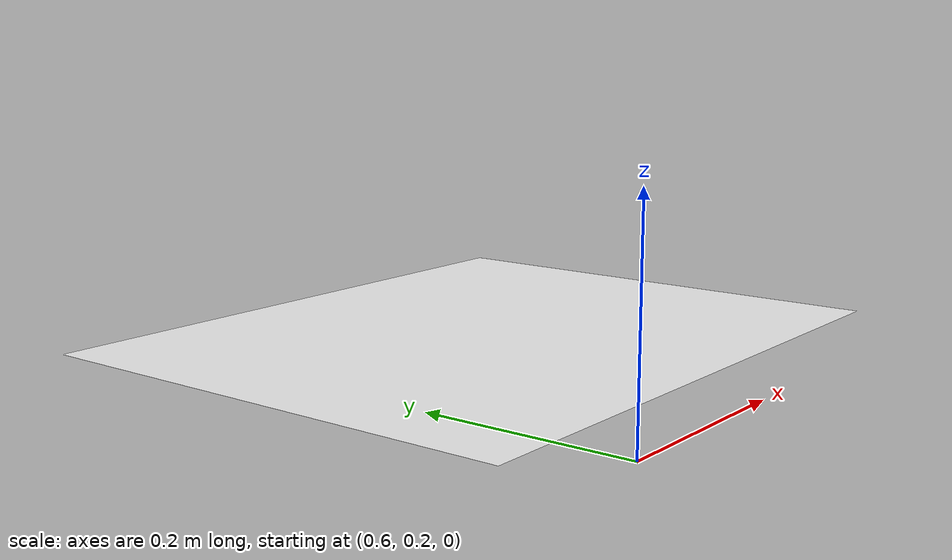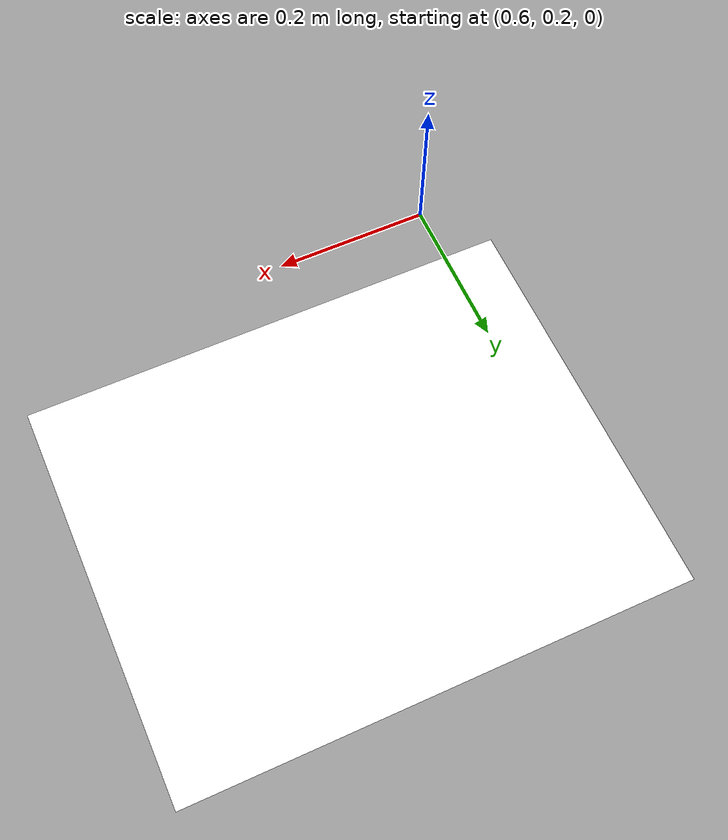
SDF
<?xml version="1.0" ?>
<sdf version="1.5">
  <model name="stripe_texture">
    <static>true</static>
    <link name="stripe_texture_link">
        <collision name="stripe_texture_collision">
         <geometry>
            <mesh>
                <uri>model://stripe_texture/meshes/model.dae</uri>
                <scale>0.5 0.5 0.5</scale>
            </mesh>
        </geometry>
      </collision>

      <visual name="stripe_texture_mesh">
        <cast_shadows>false</cast_shadows>
        <geometry>
            <mesh>
                <uri>model://stripe_texture/meshes/model.dae</uri>
                <scale>0.5 0.5 0.5</scale>
            </mesh>
        </geometry>
      </visual>
    </link>
  </model>
</sdf>
